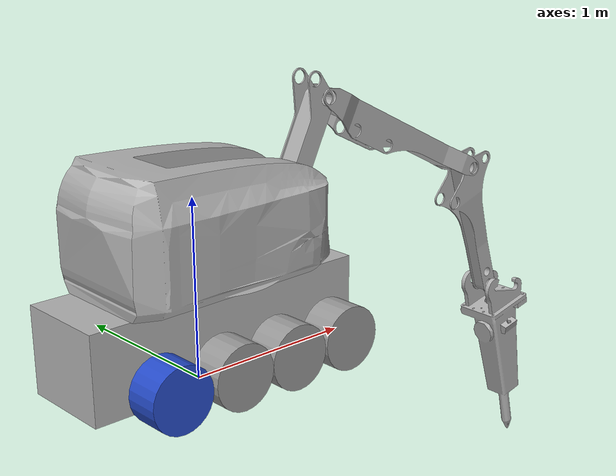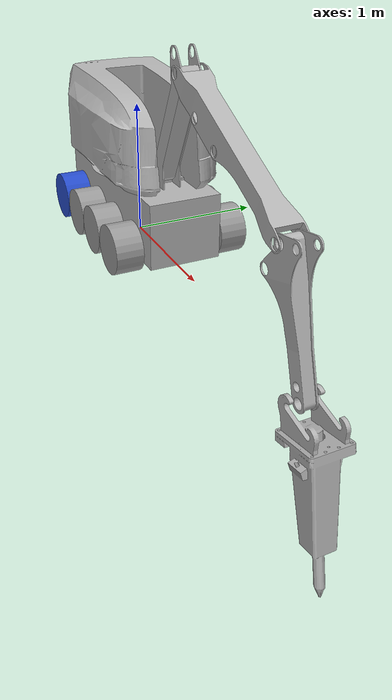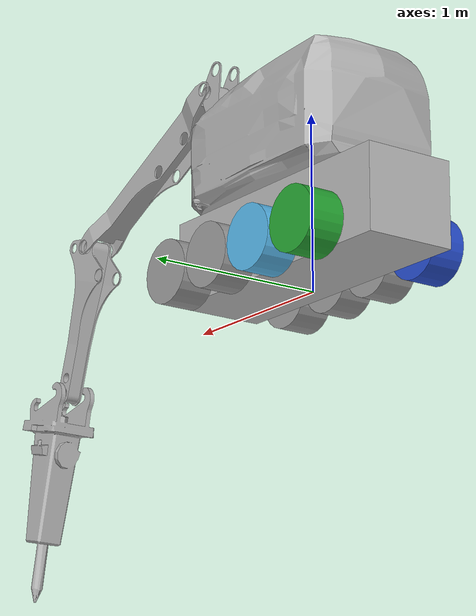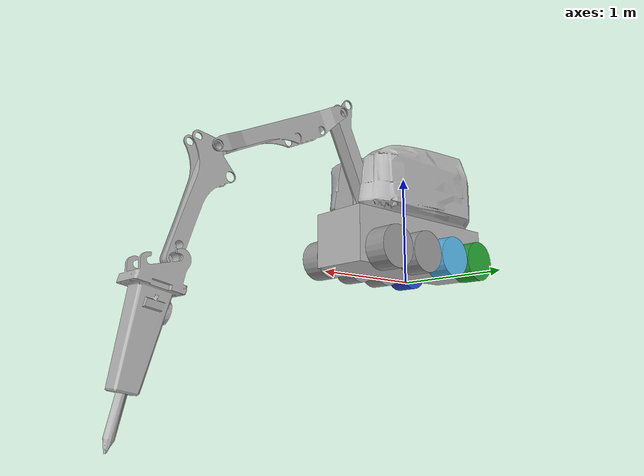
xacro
<?xml version="1.0" ?>
<robot name="testurdf" xmlns:xacro="http://ros.org/wiki/xacro">
  <xacro:include filename="$(find brokk)/description/common_properties.xacro"/>
  <xacro:include filename="$(find brokk)/description/brokk170_gazebo.xacro"/>
    <xacro:include filename="$(find brokk)/description/brokk170_control.xacro"/>

  <xacro:property name="joint_damping" value="100"/>
  <xacro:property name="PI" value="3.1415926535897931"/>
  <xacro:property name="mass" value="1" /> <!-- arbitrary value for mass -->
  <xacro:property name="width" value="0.1" /> <!-- Square dimensions (widthxwidth) of beams -->
  <xacro:property name="height1" value="2" /> <!-- Link 1 -->
  <xacro:property name="height2" value="1" /> <!-- Link 2 -->
  <xacro:property name="height3" value="1" /> <!-- Link 3 -->

  <xacro:property name="r200_cam_rgb_px" value="0.005"/>
  <xacro:property name="r200_cam_rgb_py" value="0.018"/>
  <xacro:property name="r200_cam_rgb_pz" value="0.013"/>
  <xacro:property name="r200_cam_depth_offset" value="0.01"/>

  <xacro:property name="brokk_base_lower_limit" value="0.152"/>
  <xacro:property name="brokk_base_upper_limit" value="2.983"/>
  <xacro:property name="brokk_body1_lower_limit" value="0.2513"/>
  <xacro:property name="brokk_body1_upper_limit" value="2.2617"/>
  <xacro:property name="brokk_body2_lower_limit" value="0.076"/>
  <xacro:property name="brokk_body2_upper_limit" value="1.444"/>
  <xacro:property name="brokk_body3_lower_limit" value="0.096"/>
  <xacro:property name="brokk_body3_upper_limit" value="1.824"/>
  <xacro:property name="brokk_body4_lower_limit" value="0.128"/>
  <xacro:property name="brokk_body4_upper_limit" value="2.4367"/>
  <xacro:property name="safety_limits" value="0.15"/>
  <xacro:property name="brokk_arm_vel_limit" value="50.0"/>
  <xacro:property name="k_velocity" value="1.0"/>

  <link name="base_footprint"/>

  <joint name="base_joint" type="fixed">
    <parent link="base_footprint"/>
    <child link="base_link"/>
    <origin xyz="0 0 0.010" rpy="0 0 0"/>
  </joint>

  <!-- EINHEIT: BASE LINK / LEGS AND TRACKS __________________________________________________________________________________________________________-->

  <link name="base_link">       <!--robot base??-->
    <visual>
          <origin xyz="0.05 0 0" rpy="0 0 0" />
          <geometry>
              <mesh filename="package://brokk/description/brokk_base_edit.stl" scale="0.011 0.01 0.01"/>
          </geometry>
          <material name="LightGrey">
              <color rgba="0.7 0.7 0.7 1.0"/>
          </material>
      </visual>

      <collision>
          <origin xyz="-0.064 0 0.047" rpy="0 0 0"/>
          <geometry>
     	       <mesh filename="package://brokk/description/brokk_base_collision.stl"/>
          </geometry>
      </collision>

      <inertial>
        <origin xyz="0 0 0" rpy="0 0 0" />
        <mass value="2.34"/>
        <inertia ixx="1.0" ixy="0.0" ixz="0.0" iyy="1.0" iyz="0.0" izz="1.0" />
      </inertial>

  </link>

^
  <!--EINHEIT: IMU_LINK ____________________________________________________________________________________________________________________________-->

  <link name="imu_link"/>

  <joint name="imu_joint" type="fixed">
    <parent link="base_link"/>
    <child link="imu_link"/>
    <origin xyz="0.0 0 0.047" rpy="0 0 0"/>
  </joint>

  <!-- EINHEIT: BASE STRUCTURE ____________________________________________________________________________________________________________________-->

  <link name="brokk_base_structure">
      <visual>
          <origin xyz="0.0 0.0 0.0" rpy="0 0 0" />
          <geometry>
              <mesh filename="package://brokk/description/base_final2.dae" />
          </geometry>
          <material name="LightGrey">
              <color rgba="0.7 0.7 0.7 1.0"/>
          </material>
      </visual>

      <collision>
          <origin xyz="0 0 0" rpy="0 0 0" />
          <geometry>
              <mesh scale="0.001 0.001 0.001"  filename="package://brokk/description/base.stl" />
          </geometry>
      </collision>

      <inertial>
          <origin xyz="0 0 0" rpy="0 0 0" />
          <mass value="2.34"/>
          <inertia ixx="1.0" ixy="0.0" ixz="0.0" iyy="1.0" iyz="0.0" izz="1.0" />
      </inertial>

  </link>

  <joint name="brokk_base_structure_joint" type="revolute"> <!--not really sure which joint exactly-->
    <parent link="base_link" />
    <child link = "brokk_base_structure" />
    <origin xyz="0.0 0.0 0.54" rpy="0.0 0.0 1.57" />
    <axis xyz="0 0 -1" />
    <limit effort="100.0" lower="${brokk_base_lower_limit}" upper="${brokk_base_upper_limit}" velocity="${brokk_arm_vel_limit}"/>
    <dynamics damping="${joint_damping}"/>
  </joint>

<!--EINHEIT: ARM; TEIL1 ______________________________________________________________________________________________________________________________-->

  <link name="brokk_arm1">
      <visual>
          <geometry>
          <mesh  filename="package://brokk/description/body1.dae"  />
          </geometry>
          <material name="LightGrey">
          <color rgba="0.7 0.7 0.7 1.0"/>
          </material>
      </visual>

      <collision>
      <origin xyz="0 0 0" rpy="0 0 0" />
          <geometry>
          <mesh scale="0.001 0.001 0.001" filename="package://brokk/description/body1.stl" />
          </geometry>
      </collision>

      <inertial>
          <origin xyz="0 0 0" rpy="0 0 0" />
          <mass value="2.34"/>
          <inertia ixx="1.0" ixy="0.0" ixz="0.0" iyy="1.0" iyz="0.0" izz="1.0" />
      </inertial>
    </link>

    <joint name="brokk_arm_jnt1" type="revolute">
        <parent link="brokk_base_structure" />
        <child link = "brokk_arm1" />
        <origin xyz="0.493 0 0.078" rpy="0.0 -0.806 0.0" />
        <axis xyz="0 1 0" />
        <limit effort="100.0" lower="${brokk_body1_lower_limit}" upper="${brokk_body1_upper_limit}" velocity="${brokk_arm_vel_limit}"/>
        <dynamics damping="${joint_damping}"/>
    </joint>

<!--EINHEIT: ARM; TEIL2 ______________________________________________________________________________________________________________________________-->

<link name="brokk_arm2">
        <visual>
            <geometry>
                <mesh filename="package://brokk/description/body2.dae" />
            </geometry>
            <material name="LightGrey">
                <color rgba="0.7 0.7 0.7 1.0"/>
            </material>
        </visual>

        <collision>
	        <origin xyz="0 0 0" rpy="0 0 0" />
            <geometry>
                <mesh scale="0.001 0.001 0.001" filename="package://brokk/description/body2.stl" />
            </geometry>
        </collision>

        <inertial>
            <origin xyz="0 0 0" rpy="0 0 0" />
            <mass value="2.34"/>
            <inertia ixx="1.0" ixy="0.0" ixz="0.0" iyy="1.0" iyz="0.0" izz="1.0" />
        </inertial>
    </link>

    <!--body2 joint _________________________________________________________________________________________________ -->
    <joint name="brokk_arm_jnt2" type="revolute">
      <parent link="brokk_arm1" />
      <child link ="brokk_arm2" />
      <origin xyz="0 0 0.87" rpy="0.0 0.78 0.0" />
      <axis xyz="0 -1 0" />
      <limit effort="100.0" lower="${brokk_body2_lower_limit }" upper="${brokk_body2_upper_limit }" velocity="0.5"/>
      <dynamics damping="${joint_damping}"/>
    </joint>

<!--EINHEIT: ARM; TEIL3 ______________________________________________________________________________________________________________________________-->

    <link name="brokk_arm3">
        <visual>
            <geometry>
                <mesh  filename="package://brokk/description/body3.dae" />
            </geometry>
            <material name="LightGrey">
                <color rgba="0.7 0.7 0.7 1.0"/>
            </material>
        </visual>

        <collision>
            <origin xyz="0 0 0" rpy="0 0 0" />
            <geometry>
                <mesh scale="0.001 0.001 0.001" filename="package://brokk/description/body3.stl" />
            </geometry>
        </collision>

        <inertial>
            <origin xyz="0 0 0" rpy="0 0 0" />
            <mass value="2.34"/>
            <inertia ixx="1.0" ixy="0.0" ixz="0.0" iyy="1.0" iyz="0.0" izz="1.0" />
        </inertial>
    </link>

    <!--body3 joint  __________________________________________________________________________________________________ -->
    <joint name="brokk_arm_jnt3" type="revolute">
        <parent link="brokk_arm2" />
        <child link ="brokk_arm3" />
        <origin xyz="1.37 0.0 0.01" rpy="0.0 1.75 0.0" />
        <axis xyz="0 -1 0" />
        <limit effort="100.0" lower="${brokk_body3_lower_limit }" upper="${brokk_body3_upper_limit }" velocity="0.5"/>
        <dynamics damping="${joint_damping}"/>
    </joint>

    <!-- EINHEIT: ARM4 ____________________________________________________________________________________________________________-->

     <link name="brokk_arm4">
        <visual>
            <geometry>
                <mesh  filename="package://brokk/description/body4.dae"/>
            </geometry>
            <material name="LightGrey">
                <color rgba="0.7 0.7 0.7 1.0"/>
            </material>
        </visual>

        <collision>
	        <origin xyz=" 0 0 0" rpy="0 0 0" />
            <geometry>
                <mesh scale="0.001 0.001 0.001" filename="package://brokk/description/body4.stl" />
            </geometry>
        </collision>

        <inertial>
            <origin xyz="0 0 0" rpy="0 0 0" />
            <mass value="2.34"/>
            <inertia ixx="1.0" ixy="0.0" ixz="0.0" iyy="1.0" iyz="0.0" izz="1.0" />
        </inertial>
    </link>

    <!--joint of body4___________________________________________________________________________________________________________ -->
    <joint name="brokk_arm_jnt4" type="revolute">
      <parent link="brokk_arm3" />
      <child link ="brokk_arm4" />
      <origin xyz="0.89 0 0.0" rpy="0.0 -1.19 0.0" />
      <axis xyz="0 1 0" />
      <limit effort="100.0" lower="${brokk_body4_lower_limit }" upper="${brokk_body4_upper_limit }" velocity="2"/>
     <dynamics damping="${joint_damping}"/>
    </joint>

        <!-- brokk tip link ___________________________________________________________________________________________________________ -->

  <!-- linker hinterer Reifen l0oo-->

  <joint name="wheel_left_behind_joint" type="continuous">
    <parent link="base_link"/>
    <child link="wheel_left_behind_link"/>
    <origin xyz="-0.46 0.40 0.18" rpy="0 0 0"/>
    <axis xyz="0 1 0"/>
  </joint>

  <link name="wheel_left_behind_link">
    <visual>
      <origin xyz="0.0 0.0 0.0" rpy="1.57 0 0"/>
      <geometry>
     	 <cylinder radius="0.18" length="0.20"/>
      </geometry>
      <material name="green"/>
    </visual>

    <collision>
      <origin xyz="0 0 0.0" rpy="1.57 0 0"/>
      <geometry>
        <cylinder length="0.2" radius="0.18"/>
      </geometry>
    </collision>

    <inertial>
      <origin xyz="0 0 0.0" />
      <mass value="2.8498940e-02" />
      <inertia ixx="1.1175580e-05" ixy="-4.2369783e-11" ixz="-5.9381719e-09"
               iyy="1.1192413e-05" iyz="-1.4400107e-11"
               izz="2.0712558e-05" />
      </inertial>
  </link>

	<!-- linker mittel hinten Reifen loo0o-->

  <joint name="wheel_left_mittelhinten_joint" type="continuous">
    <parent link="base_link"/>
    <child link="wheel_left_mittelhinten_link"/>
    <origin xyz="-0.09 0.40 0.18" rpy="0 0 0"/>
    <axis xyz="0 1 0"/>
  </joint>

  <link name="wheel_left_mittelhinten_link">
    <visual>
      <origin xyz="0.0 0.0 0.0" rpy="1.57 0 0"/>
      <geometry>
     	 <cylinder radius="0.18" length="0.20"/>
      </geometry>
      <material name="dark"/>
    </visual>

    <collision>
      <origin xyz="0.0 0 0.0" rpy="1.57 0 0"/>
      <geometry>
        <cylinder length="0.2" radius="0.18"/>
      </geometry>
    </collision>

    <inertial>
      <origin xyz="0.0 0 0.0" />
      <mass value="2.8498940e-02" />
      <inertia ixx="1.1175580e-05" ixy="-4.2369783e-11" ixz="-5.9381719e-09"
               iyy="1.1192413e-05" iyz="-1.4400107e-11"
               izz="2.0712558e-05" />
      </inertial>
  </link>

	<!-- linker mittel vorne Reifen lo0oo-->

  <joint name="wheel__left_mittelvorne_joint" type="continuous">
    <parent link="base_link"/>
    <child link="wheel_left_mittelvorne_link"/>
    <origin xyz="0.28 0.4 0.18" rpy="0 0 0"/>
    <axis xyz="0 1 0"/>
  </joint>

  <link name="wheel_left_mittelvorne_link">
    <visual>
      <origin xyz="0 0 0" rpy="1.57 0 0"/>
      <geometry>
     	 <cylinder radius="0.18" length="0.2"/>
      </geometry>
      <material name="dark"/>
    </visual>

    <collision>
      <origin xyz="0 0 0" rpy="1.57 0 0"/>
      <geometry>
        <cylinder length="0.2" radius="0.18"/>
      </geometry>
    </collision>

    <inertial>
      <origin xyz="0 0 0" />
      <mass value="2.8498940e-02" />
      <inertia ixx="1.1175580e-05" ixy="-4.2369783e-11" ixz="-5.9381719e-09"
               iyy="1.1192413e-05" iyz="-1.4400107e-11"
               izz="2.0712558e-05" />
      </inertial>
  </link>

	<!-- rechter mittel hinten Reifen roo0o-->

  <joint name="wheel_right_mittelhinten_joint" type="continuous">
    <parent link="base_link"/>
    <child link="wheel_right_mittelhinten_link"/>
    <origin xyz="-0.08 -0.4 0.18" rpy="0 0 0"/>
    <axis xyz="0 1 0"/>
  </joint>

  <link name="wheel_right_mittelhinten_link">
    <visual>
      <origin xyz="0.0 0 0.0" rpy="-1.57 0 0"/>
      <geometry>
      	<cylinder radius="0.18" length="0.2"/>
      </geometry>
      <material name="dark"/>
    </visual>

    <collision>
      <origin xyz="0.0 0 0.0" rpy="-1.57 0 0"/>
      <geometry>
      	<cylinder radius="0.18" length="0.2"/>
      </geometry>
    </collision>

    <inertial>
      <origin xyz="0.0 0 0.0" />
      <mass value="2.8498940e-02" />
      <inertia ixx="1.1175580e-05" ixy="-4.2369783e-11" ixz="-5.9381719e-09"
               iyy="1.1192413e-05" iyz="-1.4400107e-11"
               izz="2.0712558e-05" />
      </inertial>
  </link>

	<!-- rechter mittel vorne Reifen ro0oo-->

  <joint name="wheel_right_mittelvorne_joint" type="continuous">
    <parent link="base_link"/>
    <child link="wheel_right_mittelvorne_link"/>
    <origin xyz="0.28 -0.4 0.18" rpy="0 0 0"/>
    <axis xyz="0 1 0"/>
  </joint>

  <link name="wheel_right_mittelvorne_link">
    <visual>
      <origin xyz="0 0 0.0" rpy="-1.57 0 0"/>
      <geometry>
      	<cylinder radius="0.18" length="0.2"/>
      </geometry>
      <material name="dark"/>
    </visual>

    <collision>
      <origin xyz="0 0 0" rpy="-1.57 0 0"/>
      <geometry>
      	<cylinder radius="0.18" length="0.2"/>
      </geometry>
    </collision>

    <inertial>
      <origin xyz="0 0 0.0" />
      <mass value="2.8498940e-02" />
      <inertia ixx="1.1175580e-05" ixy="-4.2369783e-11" ixz="-5.9381719e-09"
               iyy="1.1192413e-05" iyz="-1.4400107e-11"
               izz="2.0712558e-05" />
      </inertial>
  </link>

   <!-- linker vorderer Reifen looo0-->

  <joint name="left_joint" type="continuous">
    <parent link="base_link"/>
    <child link="wheel_left_link"/>
    <origin xyz="0.65 0.4 0.18" rpy="0 0 0"/>
    <axis xyz="0.0 1.0 0.0"/>
    <dynamics damping="20"/>
  </joint>

  <link name="wheel_left_link">
    <visual>
      <origin xyz="0 0.0 0.0" rpy="1.57 0 0"/>
      <geometry>
      	<cylinder radius="0.18" length="0.2"/>
      </geometry>
      <material name="dark"/>
    </visual>

    <collision>
      <origin xyz="0.0 0 0.0" rpy="1.57 0 0"/>
      <geometry>
        <cylinder length="0.2" radius="0.18"/>
      </geometry>
    </collision>

    <inertial>
      <origin xyz="0 0 0.0" />
      <mass value="2.8498940e-02" />
      <inertia ixx="1.1175580e-05" ixy="-4.2369783e-11" ixz="-5.9381719e-09"
               iyy="1.1192413e-05" iyz="-1.4400107e-11"
               izz="2.0712558e-05" />
      </inertial>
  </link>

 <!-- rechter hinterer Reifen r0ooo -->

  <joint name="wheel_right_behind_joint" type="continuous">
    <parent link="base_link"/>
    <child link="wheel_right_behind_link"/>
    <origin xyz="-0.46 -0.4 0.18" rpy="0 0 0"/>
    <axis xyz="0 1 0"/>
    <dynamics damping="20"/>
  </joint>

  <link name="wheel_right_behind_link">
    <visual>
      <origin xyz="0 0 0" rpy="-1.57 0 0"/>
      <geometry>
      	<cylinder radius="0.18" length="0.2"/>
      </geometry>
      <material name="blue"/>
    </visual>

    <collision>
      <origin xyz="0 0 0.0" rpy="-1.57 0 0"/>
      <geometry>
      	<cylinder radius="0.18" length="0.2"/>
      </geometry>
    </collision>

    <inertial>
      <origin xyz="0 0 0.0" />
      <mass value="2.8498940e-02" />
      <inertia ixx="1.1175580e-05" ixy="-4.2369783e-11" ixz="-5.9381719e-09"
               iyy="1.1192413e-05" iyz="-1.4400107e-11"
               izz="2.0712558e-05" />
      </inertial>
  </link>

   <!-- rechter vorderer Reifen rooo0-->

  <joint name="right_joint" type="continuous">
    <parent link="base_link"/>
    <child link="wheel_right_link"/>
    <origin xyz="0.65 -0.4 0.18" rpy="0 0 0"/>
    <axis xyz="0.0 1.0 0.0"/>
  </joint>

  <link name="wheel_right_link">
    <visual>
      <origin xyz="0 0 0.0" rpy="-1.57 0 0"/>
      <geometry>
      	<cylinder radius="0.18" length="0.2"/>
      </geometry>
      <material name="dark"/>
    </visual>

    <collision>
      <origin xyz="0 0 0.0" rpy="-1.57 0 0"/>
      <geometry>
      	<cylinder radius="0.18" length="0.2"/>
      </geometry>
    </collision>

    <inertial>
      <origin xyz="0 0 0.0" />
      <mass value="2.8498940e-02" />
      <inertia ixx="1.1175580e-05" ixy="-4.2369783e-11" ixz="-5.9381719e-09"
               iyy="1.1192413e-05" iyz="-1.4400107e-11"
               izz="2.0712558e-05" />
      </inertial>
  </link>

</robot>
